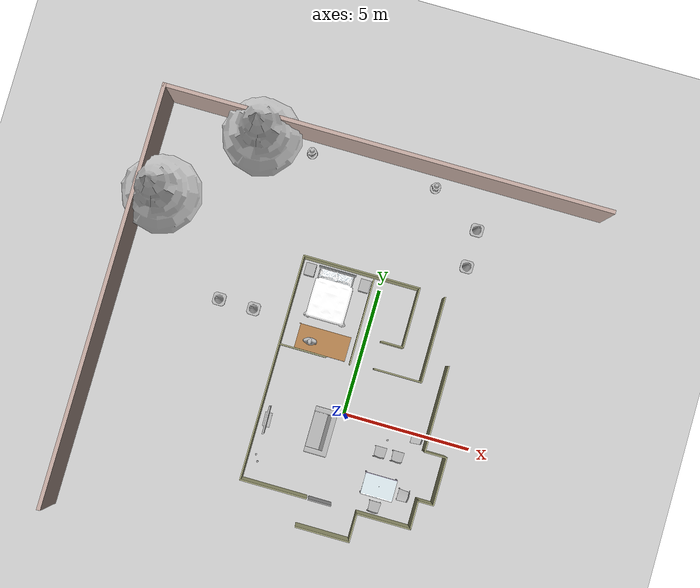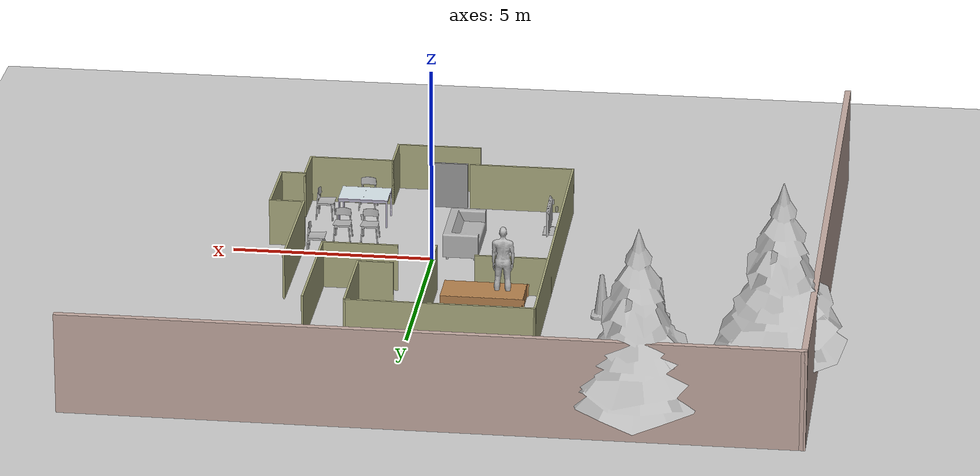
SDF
<sdf version="1.6">
 <world name="isr-testbed">
  <scene><ambient>0.4 0.4 0.4 1.0</ambient><shadows>0</shadows></scene>
  <include>
   <uri>model://ground_plane</uri>
   <material><script><uri>file://media/materials/scripts/gazebo.material</uri></script></material>
  </include>
  <include><uri>model://sun</uri></include>
  <light type="directional" name="directional">
   <pose>0 0 8 0 0 0</pose>
   <diffuse>0.3 0.3 0.3 1</diffuse>
   <specular>.1 .1 .1 1</specular>
   <attenuation>
    <range>20</range>
    <linear>0.01</linear>
    <constant>0.2</constant>
    <quadratic>0.0</quadratic>
   </attenuation>
   <direction>0 0 -1</direction>
  </light>
  <include><uri>file://isr-testbed/walls</uri><pose>0.491830 0.433522 0 0 0 0</pose></include>
  <include><uri>file://isr-testbed/wall</uri><pose>-1.19 1.86 0 0 0 0</pose></include>
  <include>
   <name>cone1</name>
   <uri>file://isr-testbed/construction_cone</uri>
   <pose>-5.94 2.97 0 0 0 0</pose>
  </include>
  <include>
   <name>cone2</name>
   <uri>file://isr-testbed/construction_cone</uri>
   <pose>-4.54 2.97 0 0 0 0</pose>
  </include>
  <include>
   <name>cone3</name>
   <uri>file://isr-testbed/construction_cone</uri>
   <pose>3.03 6.84 0 0 0 0</pose>
  </include>
  <include>
   <name>cone4</name>
   <uri>file://isr-testbed/construction_cone</uri>
   <pose>3.03 8.33 0 0 0 0</pose>
  </include>
  <include>
   <name>hydrant1</name>
   <uri>file://isr-testbed/fire_hydrant</uri>
   <pose>1.01 9.45 0 0 0 0</pose>
  </include>
  <include>
   <name>hydrant2</name>
   <uri>file://isr-testbed/fire_hydrant</uri>
   <pose>-4.0 9.45 0 0 0 0</pose>
  </include>
  <include><name>tree1</name><uri>file://isr-testbed/pine_tree</uri><pose>-6.0 9.45 0 0 0 0</pose></include>
  <include><name>tree2</name><uri>file://isr-testbed/pine_tree</uri><pose>-9.11 6.25 0 0 0 0</pose></include>
  <include>
   <name>human</name>
   <uri>file://isr-testbed/person_standing</uri>
   <pose>-2.04 2.41 0 0 0 0</pose>
  </include>
  <include><uri>file://isr-testbed/wardrobe</uri><pose>-2.65 2.44 0 1.57 0 1.57</pose></include>
  <include><uri>file://isr-testbed/beer</uri><pose>-2.73 -2.64 0.6 0 0 1</pose></include>
  <include>
   <name>cup1</name>
   <uri>file://isr-testbed/plastic_cup</uri>
   <pose>-2.85 -2.40 0.45 0 0 1</pose>
  </include>
  <include>
   <name>cup2</name>
   <uri>file://isr-testbed/plastic_cup</uri>
   <pose>1.83 -0.48 0.80 0 0 1</pose>
  </include>
  <include><uri>file://isr-testbed/bed</uri><pose>-1.94933 4.30992 0 0 0 0</pose></include>
  <include>
   <uri>file://isr-testbed/bedroom_nightstand</uri>
   <name>nightstand1</name>
   <pose>-0.69 5.0 0 0 0 0</pose>
  </include>
  <include>
   <uri>file://isr-testbed/bedroom_nightstand</uri>
   <name>nightstand2</name>
   <pose>-2.89 5.03713 0 0 0 0</pose>
  </include>
  <include><uri>file://isr-testbed/dinning_room_table</uri><pose>2.05802 -2.30976 0 0 0 0</pose></include>
  <include>
   <uri>file://isr-testbed/simple_chair</uri>
   <name>chair_dinning_room_1</name>
   <pose>1.91 -3.05 0 0 0 0</pose>
  </include>
  <include>
   <uri>file://isr-testbed/simple_chair</uri>
   <name>chair_dinning_room_2</name>
   <pose>2.96 -2.52 0 0 0 1.54796</pose>
  </include>
  <include>
   <uri>file://isr-testbed/simple_chair</uri>
   <name>chair_kitchen_1</name>
   <pose>1.57 -0.98 0 0 0 0</pose>
  </include>
  <include>
   <uri>file://isr-testbed/simple_chair</uri>
   <name>chair_kitchen_2</name>
   <pose>2.26 -0.97 0 0 0 0</pose>
  </include>
  <include>
   <uri>file://isr-testbed/simple_chair</uri>
   <name>chair_kitchen_3</name>
   <pose>2.88 -0.26 0 0 0 1.59</pose>
  </include>
  <include><uri>file://isr-testbed/sofa</uri><pose>-0.76 -0.90 0 0 0 0</pose></include>
  <include><uri>file://isr-testbed/tv</uri><pose>-2.85 -0.94 0.035264 0 0 -0.026</pose></include>
 </world>
</sdf>

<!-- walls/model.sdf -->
<sdf version='1.6'>
  <model name='walls'>
    <pose frame=''>0.070483 0.106017 0 0 -0 0</pose>
    <link name='Door_4'>
      <collision name='Door_4_Collision'>
        <geometry>
          <box>
            <size>0.906 0.05 1.2</size>
          </box>
        </geometry>
        <pose frame=''>0 0 0.6 0 -0 0</pose>
      </collision>
      <visual name='Door_4_Visual'>
        <pose frame=''>0 0 0.6 0 -0 0</pose>
        <geometry>
          <box>
            <size>0.906 0.05 1.2</size>
          </box>
        </geometry>
        <material>
          <script>
            <uri>file://media/materials/scripts/gazebo.material</uri>
            <name>Gazebo/Grey</name>
          </script>
        </material>
      </visual>
      <pose frame=''>-0.514741 -3.87011 0 0 0 -0.000969</pose>
    </link>
    <link name='Wall_19'>
      <collision name='Wall_19_Collision'>
        <geometry>
          <box>
            <size>1.9 0.05 1</size>
          </box>
        </geometry>
        <pose frame=''>0 0 0.5 0 -0 0</pose>
      </collision>
      <visual name='Wall_19_Visual'>
        <pose frame=''>0 0 0.5 0 -0 0</pose>
        <geometry>
          <box>
            <size>1.9 0.05 1</size>
          </box>
        </geometry>
        <material>
          <script>
            <uri>file://media/materials/scripts/gazebo.material</uri>
            <name>Gazebo/Grey</name>
          </script>
          <ambient>0.666667 0.666667 0.498039 1</ambient>
        </material>
      </visual>
      <pose frame=''>-2.73248 1.48798 0 0 -0 0</pose>
    </link>
    <link name='Wall_21'>
      <collision name='Wall_21_Collision'>
        <geometry>
          <box>
            <size>2.15 0.05 1.2</size>
          </box>
        </geometry>
        <pose frame=''>0 0 0.6 0 -0 0</pose>
      </collision>
      <visual name='Wall_21_Visual'>
        <pose frame=''>0 0 0.6 0 -0 0</pose>
        <geometry>
          <box>
            <size>2.15 0.05 1.2</size>
          </box>
        </geometry>
        <material>
          <script>
            <uri>file://media/materials/scripts/gazebo.material</uri>
            <name>Gazebo/Grey</name>
          </script>
          <ambient>0.666667 0.666667 0.498039 1</ambient>
        </material>
      </visual>
      <pose frame=''>-0.092483 -4.98802 0 0 -0 0</pose>
    </link>
    <link name='Wall_22'>
      <collision name='Wall_22_Collision'>
        <geometry>
          <box>
            <size>1.15 0.05 1.2</size>
          </box>
        </geometry>
        <pose frame=''>0 0 0.6 0 -0 0</pose>
      </collision>
      <visual name='Wall_22_Visual'>
        <pose frame=''>0 0 0.6 0 -0 0</pose>
        <geometry>
          <box>
            <size>1.15 0.05 1.2</size>
          </box>
        </geometry>
        <material>
          <script>
            <uri>file://media/materials/scripts/gazebo.material</uri>
            <name>Gazebo/Grey</name>
          </script>
          <ambient>0.666667 0.666667 0.498039 1</ambient>
        </material>
      </visual>
      <pose frame=''>0.957517 -4.43802 0 0 -0 1.5708</pose>
    </link>
    <link name='Wall_23'>
      <collision name='Wall_23_Collision'>
        <geometry>
          <box>
            <size>2.15 0.05 1.2</size>
          </box>
        </geometry>
        <pose frame=''>0 0 0.6 0 -0 0</pose>
      </collision>
      <visual name='Wall_23_Visual'>
        <pose frame=''>0 0 0.6 0 -0 0</pose>
        <geometry>
          <box>
            <size>2.15 0.05 1.2</size>
          </box>
        </geometry>
        <material>
          <script>
            <uri>file://media/materials/scripts/gazebo.material</uri>
            <name>Gazebo/Grey</name>
          </script>
          <ambient>0.666667 0.666667 0.498039 1</ambient>
        </material>
      </visual>
      <pose frame=''>2.00752 -3.88802 0 0 -0 0</pose>
    </link>
    <link name='Wall_24'>
      <collision name='Wall_24_Collision'>
        <geometry>
          <box>
            <size>1.15 0.05 1.2</size>
          </box>
        </geometry>
        <pose frame=''>0 0 0.6 0 -0 0</pose>
      </collision>
      <visual name='Wall_24_Visual'>
        <pose frame=''>0 0 0.6 0 -0 0</pose>
        <geometry>
          <box>
            <size>1.15 0.05 1.2</size>
          </box>
        </geometry>
        <material>
          <script>
            <uri>file://media/materials/scripts/gazebo.material</uri>
            <name>Gazebo/Grey</name>
          </script>
          <ambient>0.666667 0.666667 0.498039 1</ambient>
        </material>
      </visual>
      <pose frame=''>3.05752 -3.33802 0 0 -0 1.5708</pose>
    </link>
    <link name='Wall_25'>
      <collision name='Wall_25_Collision'>
        <geometry>
          <box>
            <size>0.65 0.05 1.2</size>
          </box>
        </geometry>
        <pose frame=''>0 0 0.6 0 -0 0</pose>
      </collision>
      <visual name='Wall_25_Visual'>
        <pose frame=''>0 0 0.6 0 -0 0</pose>
        <geometry>
          <box>
            <size>0.65 0.05 1.2</size>
          </box>
        </geometry>
        <material>
          <script>
            <uri>file://media/materials/scripts/gazebo.material</uri>
            <name>Gazebo/Grey</name>
          </script>
          <ambient>0.666667 0.666667 0.498039 1</ambient>
        </material>
      </visual>
      <pose frame=''>3.35752 -2.78802 0 0 -0 0</pose>
    </link>
    <link name='Wall_26'>
      <collision name='Wall_26_Collision'>
        <geometry>
          <box>
            <size>1.9 0.05 1.2</size>
          </box>
        </geometry>
        <pose frame=''>0 0 0.6 0 -0 0</pose>
      </collision>
      <visual name='Wall_26_Visual'>
        <pose frame=''>0 0 0.6 0 -0 0</pose>
        <geometry>
          <box>
            <size>1.9 0.05 1.2</size>
          </box>
        </geometry>
        <material>
          <script>
            <uri>file://media/materials/scripts/gazebo.material</uri>
            <name>Gazebo/Grey</name>
          </script>
          <ambient>0.666667 0.666667 0.498039 1</ambient>
        </material>
      </visual>
      <pose frame=''>3.65752 -1.86302 0 0 -0 1.5708</pose>
    </link>
    <link name='Wall_27'>
      <collision name='Wall_27_Collision'>
        <geometry>
          <box>
            <size>0.9 0.05 1.2</size>
          </box>
        </geometry>
        <pose frame=''>0 0 0.6 0 -0 0</pose>
      </collision>
      <visual name='Wall_27_Visual'>
        <pose frame=''>0 0 0.6 0 -0 0</pose>
        <geometry>
          <box>
            <size>0.9 0.05 1.2</size>
          </box>
        </geometry>
        <material>
          <script>
            <uri>file://media/materials/scripts/gazebo.material</uri>
            <name>Gazebo/Grey</name>
          </script>
          <ambient>0.666667 0.666667 0.498039 1</ambient>
        </material>
      </visual>
      <pose frame=''>3.23252 -0.938017 0 0 -0 3.14159</pose>
    </link>
    <link name='Wall_36'>
      <collision name='Wall_36_Collision'>
        <geometry>
          <box>
            <size>1.9 0.05 1.2</size>
          </box>
        </geometry>
        <pose frame=''>0 0 0.6 0 -0 0</pose>
      </collision>
      <visual name='Wall_36_Visual'>
        <pose frame=''>0 0 0.6 0 -0 0</pose>
        <geometry>
          <box>
            <size>1.9 0.05 1.2</size>
          </box>
        </geometry>
        <material>
          <script>
            <uri>file://media/materials/scripts/gazebo.material</uri>
            <name>Gazebo/Grey</name>
          </script>
          <ambient>0.666667 0.666667 0.498039 1</ambient>
        </material>
      </visual>
      <pose frame=''>1.04652 1.55798 0 0 -0 0</pose>
    </link>
    <link name='Wall_48'>
      <collision name='Wall_48_Collision'>
        <geometry>
          <box>
            <size>8.90001 0.05 1.2</size>
          </box>
        </geometry>
        <pose frame=''>0 0 0.6 0 -0 0</pose>
      </collision>
      <visual name='Wall_48_Visual'>
        <pose frame=''>0 0 0.6 0 -0 0</pose>
        <geometry>
          <box>
            <size>8.90001 0.05 1.2</size>
          </box>
        </geometry>
        <material>
          <script>
            <uri>file://media/materials/scripts/gazebo.material</uri>
            <name>Gazebo/Grey</name>
          </script>
          <ambient>0.666667 0.666667 0.498039 1</ambient>
        </material>
      </visual>
      <pose frame=''>-3.65148 0.562983 0 0 -0 1.57215</pose>
    </link>
    <link name='Wall_49'>
      <collision name='Wall_49_Collision'>
        <geometry>
          <box>
            <size>4.65 0.05 1.2</size>
          </box>
        </geometry>
        <pose frame=''>0 0 0.6 0 -0 0</pose>
      </collision>
      <visual name='Wall_49_Visual'>
        <pose frame=''>0 0 0.6 0 -0 0</pose>
        <geometry>
          <box>
            <size>4.65 0.05 1.2</size>
          </box>
        </geometry>
        <material>
          <script>
            <uri>file://media/materials/scripts/gazebo.material</uri>
            <name>Gazebo/Grey</name>
          </script>
          <ambient>0.666667 0.666667 0.498039 1</ambient>
        </material>
      </visual>
      <pose frame=''>-1.35748 4.98798 0 0 -0 0</pose>
    </link>
    <link name='Wall_50'>
      <collision name='Wall_50_Collision'>
        <geometry>
          <box>
            <size>2.4 0.05 1.2</size>
          </box>
        </geometry>
        <pose frame=''>0 0 0.6 0 -0 0</pose>
      </collision>
      <visual name='Wall_50_Visual'>
        <pose frame=''>0 0 0.6 0 -0 0</pose>
        <geometry>
          <box>
            <size>2.4 0.05 1.2</size>
          </box>
        </geometry>
        <material>
          <script>
            <uri>file://media/materials/scripts/gazebo.material</uri>
            <name>Gazebo/Grey</name>
          </script>
          <ambient>0.666667 0.666667 0.498039 1</ambient>
        </material>
      </visual>
      <pose frame=''>0.942517 3.81298 0 0 0 -1.5708</pose>
    </link>
    <link name='Wall_51'>
      <collision name='Wall_51_Collision'>
        <geometry>
          <box>
            <size>0.9 0.05 1.2</size>
          </box>
        </geometry>
        <pose frame=''>0 0 0.6 0 -0 0</pose>
      </collision>
      <visual name='Wall_51_Visual'>
        <pose frame=''>0 0 0.6 0 -0 0</pose>
        <geometry>
          <box>
            <size>0.9 0.05 1.2</size>
          </box>
        </geometry>
        <material>
          <script>
            <uri>file://media/materials/scripts/gazebo.material</uri>
            <name>Gazebo/Grey</name>
          </script>
          <ambient>0.666667 0.666667 0.498039 1</ambient>
        </material>
      </visual>
      <pose frame=''>0.517517 2.63798 0 0 -0 3.14159</pose>
    </link>
    <link name='Wall_53'>
      <collision name='Wall_53_Collision'>
        <geometry>
          <box>
            <size>3.4 0.05 1.2</size>
          </box>
        </geometry>
        <pose frame=''>0 0 0.6 0 -0 0</pose>
      </collision>
      <visual name='Wall_53_Visual'>
        <pose frame=''>0 0 0.6 0 -0 0</pose>
        <geometry>
          <box>
            <size>3.4 0.05 1.2</size>
          </box>
        </geometry>
        <material>
          <script>
            <uri>file://media/materials/scripts/gazebo.material</uri>
            <name>Gazebo/Grey</name>
          </script>
          <ambient>0.666667 0.666667 0.498039 1</ambient>
        </material>
      </visual>
      <pose frame=''>-0.835483 3.14198 0 0 -0 1.5708</pose>
    </link>
    <link name='Wall_58'>
      <collision name='Wall_58_Collision'>
        <geometry>
          <box>
            <size>3.4 0.05 1.2</size>
          </box>
        </geometry>
        <pose frame=''>0 0 0.6 0 -0 0</pose>
      </collision>
      <visual name='Wall_58_Visual'>
        <pose frame=''>0 0 0.6 0 -0 0</pose>
        <geometry>
          <box>
            <size>3.4 0.05 1.2</size>
          </box>
        </geometry>
        <material>
          <script>
            <uri>file://media/materials/scripts/gazebo.material</uri>
            <name>Gazebo/Grey</name>
          </script>
          <ambient>0.666667 0.666667 0.498039 1</ambient>
        </material>
      </visual>
      <pose frame=''>1.97152 3.23298 0 0 -0 1.5708</pose>
    </link>
    <link name='Wall_61'>
      <collision name='Wall_61_Collision'>
        <geometry>
          <box>
            <size>2.65 0.05 1.2</size>
          </box>
        </geometry>
        <pose frame=''>0 0 0.6 0 -0 0</pose>
      </collision>
      <visual name='Wall_61_Visual'>
        <pose frame=''>0 0 0.6 0 -0 0</pose>
        <geometry>
          <box>
            <size>2.65 0.05 1.2</size>
          </box>
        </geometry>
        <material>
          <script>
            <uri>file://media/materials/scripts/gazebo.material</uri>
            <name>Gazebo/Grey</name>
          </script>
          <ambient>0.666667 0.666667 0.498039 1</ambient>
        </material>
      </visual>
      <pose frame=''>-2.34548 -3.86202 0 0 -0 0</pose>
    </link>
    <link name='Wall_63'>
      <collision name='Wall_63_Collision'>
        <geometry>
          <box>
            <size>3.4 0.05 1.2</size>
          </box>
        </geometry>
        <pose frame=''>0 0 0.6 0 -0 0</pose>
      </collision>
      <visual name='Wall_63_Visual'>
        <pose frame=''>0 0 0.6 0 -0 0</pose>
        <geometry>
          <box>
            <size>3.4 0.05 1.2</size>
          </box>
        </geometry>
        <material>
          <script>
            <uri>file://media/materials/scripts/gazebo.material</uri>
            <name>Gazebo/Grey</name>
          </script>
          <ambient>0.666667 0.666667 0.498039 1</ambient>
        </material>
      </visual>
      <pose frame=''>2.80752 0.736983 0 0 -0 1.5708</pose>
    </link>
    <static>1</static>
  </model>
</sdf>

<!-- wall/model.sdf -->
<sdf version='1.6'>
  <model name='wall'>
    <pose frame=''>-1.26581 1.80502 0 0 -0 0</pose>
    <link name='Wall_0'>
      <collision name='Wall_0_Collision'>
        <geometry>
          <box>
            <size>16.5 0.15 2.5</size>
          </box>
        </geometry>
        <pose frame=''>0 0 1.25 0 -0 0</pose>
      </collision>
      <visual name='Wall_0_Visual'>
        <pose frame=''>0 0 1.25 0 -0 0</pose>
        <geometry>
          <box>
            <size>16.5 0.15 2.5</size>
          </box>
        </geometry>
        <material>
          <script>
            <uri>file://media/materials/scripts/gazebo.material</uri>
            <name>Gazebo/Grey</name>
          </script>
          <ambient>0.760784 0.662745 0.627451 1</ambient>
        </material>
        <meta>
          <layer>0</layer>
        </meta>
      </visual>
      <pose frame=''>-8.71419 -1.8e-05 0 0 0 -1.5708</pose>
    </link>
    <link name='Wall_2'>
      <collision name='Wall_2_Collision'>
        <geometry>
          <box>
            <size>17.5784 0.15 2.5</size>
          </box>
        </geometry>
        <pose frame=''>0 0 1.25 0 -0 0</pose>
      </collision>
      <visual name='Wall_2_Visual'>
        <pose frame=''>0 0 1.25 0 -0 0</pose>
        <geometry>
          <box>
            <size>17.5784 0.15 2.5</size>
          </box>
        </geometry>
        <material>
          <script>
            <uri>file://media/materials/scripts/gazebo.material</uri>
            <name>Gazebo/Grey</name>
          </script>
          <ambient>0.760784 0.662745 0.627451 1</ambient>
        </material>
        <meta>
          <layer>0</layer>
        </meta>
      </visual>
      <pose frame=''>0 8.17066 0 0 0 -0.000496</pose>
    </link>
    <static>1</static>
  </model>
</sdf>

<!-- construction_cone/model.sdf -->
<sdf version="1.5">
  <model name="Construction Cone">
    <link name="link">
      <collision name="collision">
        <geometry>
          <mesh>
            <scale>10 10 10</scale>
            <uri>file://isr-testbed/construction_cone/meshes/construction_cone.dae</uri>
          </mesh>
        </geometry>
      </collision>
      <visual name="visual">
        <geometry>
          <mesh>
            <scale>10 10 10</scale>
            <uri>file://isr-testbed/construction_cone/meshes/construction_cone.dae</uri>
          </mesh>
        </geometry>
      </visual>
    </link>
  </model>
</sdf>

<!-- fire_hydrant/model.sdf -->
<sdf version="1.5">
  <model name="fire_hydrant">
    <static>true</static>
    <link name="link">
      <collision name="collision">
        <geometry>
          <mesh>
            <uri>file://isr-testbed/fire_hydrant/meshes/fire_hydrant.dae</uri>
          </mesh>
        </geometry>
      </collision>
      <visual name="visual">
        <geometry>
          <mesh>
            <uri>file://isr-testbed/fire_hydrant/meshes/fire_hydrant.dae</uri>
          </mesh>
        </geometry>
      </visual>
    </link>
  </model>
</sdf>

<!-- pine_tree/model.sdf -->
<sdf version="1.6">
  <model name="pine_tree">
    <static>true</static>
    <link name="link">
      <collision name="collision">
        <geometry>
          <mesh>
            <uri>file://isr-testbed/pine_tree/meshes/pine_tree.dae</uri>
          </mesh>
        </geometry>
      </collision>
      <visual name="branch">
        <geometry>
          <mesh>
            <uri>file://isr-testbed/pine_tree/meshes/pine_tree.dae</uri>
            <submesh>
              <name>Branch</name>
            </submesh>
          </mesh>
        </geometry>
        <material>
          <script>
            <uri>file://isr-testbed/pine_tree/materials/scripts/</uri>
            <uri>file://isr-testbed/pine_tree/materials/textures/</uri>
            <name>PineTree/Branch</name>
          </script>
        </material>
      </visual>
      <visual name="bark">
        <geometry>
          <mesh>
            <uri>file://isr-testbed/pine_tree/meshes/pine_tree.dae</uri>
            <submesh>
              <name>Bark</name>
            </submesh>
          </mesh>
        </geometry>
        <material>
          <script>
            <uri>file://isr-testbed/pine_tree/materials/scripts/</uri>
            <uri>file://isr-testbed/pine_tree/materials/textures/</uri>
            <name>PineTree/Bark</name>
          </script>
        </material>
      </visual>
    </link>
  </model>
</sdf>

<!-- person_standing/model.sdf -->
<sdf version="1.5">
  <model name="person_standing">
    <link name="link">
      <inertial>
        <pose>0 -0.1 0.95 0 0 0</pose>
        <mass>80.0</mass>
        <inertia>
          <ixx>24.88</ixx>
          <ixy>0</ixy>
          <ixz>0</ixz>
          <iyy>25.73</iyy>
          <iyz>0</iyz>
          <izz>2.48</izz>
        </inertia>
      </inertial>

      <collision name="bottom">
        <pose>0 -0.1 0.01 0 0 0</pose>
        <geometry>
          <box>
            <size>0.5 0.35 0.02</size>
          </box>
        </geometry>
      </collision>

      <collision name="person">
        <pose>0 0 0.02 0.04 0 0</pose>
        <geometry>
          <mesh>
            <uri>file://isr-testbed/person_standing/meshes/standing.stl</uri>
          </mesh>
        </geometry>
      </collision>

      <visual name="visual">
        <pose>0 0 0.02 0.04 0 0</pose>
        <geometry>
          <mesh>
            <uri>file://isr-testbed/person_standing/meshes/standing.dae</uri>
          </mesh>
        </geometry>
      </visual>
    </link>
  </model>
</sdf>

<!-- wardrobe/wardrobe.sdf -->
<sdf version='1.6'>
  <model name='wardrobe'>
    <link name='base_link'>
      <pose frame=''>0 0 0 0 -0 0</pose>
      <inertial>
        <pose frame=''>0 1.1 0 0 -0 0</pose>
        <mass>20</mass>
        <inertia>
          <ixx>7.5306636544</ixx>
          <ixy>0</ixy>
          <ixz>0</ixz>
          <iyy>2.5306656544</iyy>
          <iyz>0</iyz>
          <izz>8.33333</izz>
        </inertia>
      </inertial>
      <visual name='base_link_collision'>
        <pose frame=''>0 0 0 0 -0 0</pose>
        <geometry>
          <mesh>
            <scale>1 1 1</scale>
            <uri>file://isr-testbed/wardrobe/3d-model.dae</uri>
          </mesh>
        </geometry>
        <material>
          <script>
            <uri>file://media/materials/scripts/gazebo.material</uri>
            <name>Gazebo/WoodFloor</name>
          </script>
        </material>
      </visual>
      <collision name='base_link_visual'>
        <pose frame=''>0 1.1 0 0 -0 0</pose>
        <geometry>
          <box>
            <size>1 2 0.72</size>
          </box>
        </geometry>
      </collision>
    </link>
    <static>1</static>
  </model>
</sdf>

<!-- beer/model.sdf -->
<sdf version='1.4'>
  <model name="beer">
    <link name='link'>
      <pose>0 0 0 0 0 0</pose>
      <inertial>
        <mass>0.390</mass>
        <inertia>
          <ixx>0.00058</ixx>
          <ixy>0</ixy>
          <ixz>0</ixz>
          <iyy>0.00058</iyy>
          <iyz>0</iyz>
          <izz>0.00025</izz>
        </inertia>
      </inertial>
      <collision name='collision'>
        <geometry>
          <cylinder>
            <radius>0.03500</radius>
            <length>0.12000</length>
          </cylinder>
        </geometry>
      </collision>

      <visual name='visual'>
        <geometry>
          <cylinder>
            <radius>0.03500</radius>
            <length>0.12000</length>
          </cylinder>
        </geometry>

        <material>
          <script>
            <uri>model://beer/materials/scripts</uri>
            <uri>model://beer/materials/textures</uri>
            <name>Beer/Diffuse</name>
          </script>
        </material>
      </visual>
    </link>
  </model>
</sdf>

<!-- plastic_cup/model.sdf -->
<sdf version="1.5">
  <model name="plastic_cup">
    <link name="link">
      <pose>0 0 0.065 0 0 0</pose>
      <inertial>
        <pose>0 0.01 0 0 0 0</pose>
        <mass>0.0599</mass>
        <inertia>
          <ixx>0.0001028961527030333</ixx>
          <ixy>0</ixy>
          <ixz>0</ixz>
          <iyy>0.0001028961527030333</iyy>
          <iyz>0</iyz>
          <izz>3.2876352372798436e-05</izz>
        </inertia>
      </inertial>
      <collision name="collision">
        <pose>0 0 0 0 0 0</pose>
        <geometry>
          <mesh>
            <uri>file://isr-testbed/plastic_cup/meshes/plastic_cup.dae</uri>
          </mesh>
        </geometry>
      </collision>
      <visual name="visual">
        <pose>0 0 0 0 0 0</pose>
        <geometry>
          <mesh>
            <uri>file://isr-testbed/plastic_cup/meshes/plastic_cup.dae</uri>
          </mesh>
        </geometry>
        <material>
          <script>
            <uri>file://media/materials/scripts/gazebo.material</uri>
            <name>Gazebo/GreyTransparent</name>
          </script>
        </material>
      </visual>
    </link>
  </model>
</sdf>

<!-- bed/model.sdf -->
<sdf version='1.6'>
  <model name='bed'>
    <link name='link_0'>
      <pose frame=''>0 0 0 0 -0 0</pose>
      <inertial>
        <pose frame=''>0.2 0 0 0 -0 0</pose>
        <mass>30</mass>
        <inertia>
          <ixx>12.9999948</ixx>
          <ixy>0</ixy>
          <ixz>0</ixz>
          <iyy>7.29999708</iyy>
          <iyz>0</iyz>
          <izz>18.4999926</izz>
        </inertia>
      </inertial>
      <visual name='visual'>
        <pose frame=''>-1.35 -8 -0.3 0 -0 -0</pose>
        <geometry>
          <mesh>
            <uri>file://isr-testbed/bed/bed.dae</uri>
            <scale>1 1 1</scale>
          </mesh>
        </geometry>
        <cast_shadows>1</cast_shadows>
        <transparency>0</transparency>
      </visual>
      <collision name='collision'>
        <laser_retro>0</laser_retro>
        <max_contacts>10</max_contacts>
        <pose frame=''>0.2 0 0 0 -0 0</pose>
        <geometry>
          <box>
            <size>1.6 2.2 0.6</size>
          </box>
        </geometry>
        <surface>
          <friction>
            <ode>
              <mu>1</mu>
              <mu2>1</mu2>
              <fdir1>0 0 0</fdir1>
              <slip1>0</slip1>
              <slip2>0</slip2>
            </ode>
            <torsional>
              <coefficient>1</coefficient>
              <patch_radius>0</patch_radius>
              <surface_radius>0</surface_radius>
              <use_patch_radius>1</use_patch_radius>
              <ode>
                <slip>0</slip>
              </ode>
            </torsional>
          </friction>
          <bounce>
            <restitution_coefficient>0</restitution_coefficient>
            <threshold>1e+06</threshold>
          </bounce>
          <contact>
            <collide_without_contact>0</collide_without_contact>
            <collide_without_contact_bitmask>1</collide_without_contact_bitmask>
            <collide_bitmask>1</collide_bitmask>
            <ode>
              <soft_cfm>0</soft_cfm>
              <soft_erp>0.2</soft_erp>
              <kp>1e+13</kp>
              <kd>1</kd>
              <max_vel>0.01</max_vel>
              <min_depth>0</min_depth>
            </ode>
            <bullet>
              <split_impulse>1</split_impulse>
              <split_impulse_penetration_threshold>-0.01</split_impulse_penetration_threshold>
              <soft_cfm>0</soft_cfm>
              <soft_erp>0.2</soft_erp>
              <kp>1e+13</kp>
              <kd>1</kd>
            </bullet>
          </contact>
        </surface>
      </collision>
    </link>
    <static>0</static> <!-- center has an offset so will not behave properly if this is set to 0 -->
    <allow_auto_disable>1</allow_auto_disable>
  </model>
</sdf>

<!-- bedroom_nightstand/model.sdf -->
<sdf version='1.6'>
  <model name='bedroom_nightstand'>
    <link name='link_0'>
      <pose frame=''>0 0 0 0 -0 0</pose>
      <inertial>
        <mass>5</mass>
        <inertia>
          <ixx>0.166667</ixx>
          <ixy>0</ixy>
          <ixz>0</ixz>
          <iyy>0.166667</iyy>
          <iyz>0</iyz>
          <izz>0.166667</izz>
        </inertia>
      </inertial>
      <visual name='visual'>
        <pose frame=''>0 0 0 0 -0 0</pose>
        <geometry>
          <mesh>
            <uri>file://isr-testbed/bedroom_nightstand/bedroom_nightstand.dae</uri>
            <scale>1 1 1</scale>
          </mesh>
        </geometry>
        <material>
          <lighting>1</lighting>
          <script>
            <uri>file://media/materials/scripts/gazebo.material</uri>
            <name>Gazebo/DepthMapVS</name>
          </script>
          <ambient>0.3 0.3 0.3 1</ambient>
          <diffuse>0.7 0.7 0.7 1</diffuse>
          <specular>0.01 0.01 0.01 1</specular>
          <emissive>0 0 0 1</emissive>
        </material>
        <cast_shadows>1</cast_shadows>
        <transparency>0</transparency>
      </visual>
      <collision name='collision'>
        <laser_retro>0</laser_retro>
        <max_contacts>10</max_contacts>
        <pose frame=''>0 0 0 0 -0 0</pose>
        <geometry>
          <mesh>
            <uri>file://isr-testbed/bedroom_nightstand/bedroom_nightstand.dae</uri>
          </mesh>
        </geometry>
        <surface>
          <friction>
            <ode>
              <mu>1</mu>
              <mu2>1</mu2>
              <fdir1>0 0 0</fdir1>
              <slip1>0</slip1>
              <slip2>0</slip2>
            </ode>
            <torsional>
              <coefficient>1</coefficient>
              <patch_radius>0</patch_radius>
              <surface_radius>0</surface_radius>
              <use_patch_radius>1</use_patch_radius>
              <ode>
                <slip>0</slip>
              </ode>
            </torsional>
          </friction>
          <bounce>
            <restitution_coefficient>0</restitution_coefficient>
            <threshold>1e+06</threshold>
          </bounce>
          <contact>
            <collide_without_contact>0</collide_without_contact>
            <collide_without_contact_bitmask>1</collide_without_contact_bitmask>
            <collide_bitmask>1</collide_bitmask>
            <ode>
              <soft_cfm>0</soft_cfm>
              <soft_erp>0.2</soft_erp>
              <kp>1e+13</kp>
              <kd>1</kd>
              <max_vel>0.01</max_vel>
              <min_depth>0</min_depth>
            </ode>
            <bullet>
              <split_impulse>1</split_impulse>
              <split_impulse_penetration_threshold>-0.01</split_impulse_penetration_threshold>
              <soft_cfm>0</soft_cfm>
              <soft_erp>0.2</soft_erp>
              <kp>1e+13</kp>
              <kd>1</kd>
            </bullet>
          </contact>
        </surface>
      </collision>
    </link>
    <static>0</static>
    <allow_auto_disable>1</allow_auto_disable>
  </model>
</sdf>

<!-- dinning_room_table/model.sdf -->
<sdf version='1.6'>
  <model name='dinning_room_table'>
    <link name='base_link'>
      <pose frame=''>0 0 0 0 0 0</pose>
      <inertial>
        <pose frame=''>-0.04 0.015 0.75 0 0 0</pose>
        <mass>10</mass>
        <inertia>
          <ixx>0.68333306</ixx>
          <ixy>0</ixy>
          <ixz>0</ixz>
          <iyy>1.4166661</iyy>
          <iyz>0</iyz>
          <izz>2.0833325</izz>
        </inertia>
      </inertial>
      <visual name='visual'>
        <pose frame=''>-4.8 -1.2 0 0 -0 0</pose>
        <geometry>
          <mesh>
            <uri>file://isr-testbed/dinning_room_table/dinning_room_table.dae</uri>
            <scale>1 1 1</scale>
          </mesh>
        </geometry>
        <transparency>0</transparency>
      </visual>
      <collision name='base_collision'>
        <laser_retro>0</laser_retro>
        <max_contacts>10</max_contacts>
        <pose frame=''>-0.04 0.015 0.75 0 0 0</pose>
        <geometry>
          <box>
            <size>1.3 0.9 0.1</size>
          </box>
        </geometry>
      </collision>
      <collision name='leg1_collision'>
        <laser_retro>0</laser_retro>
        <max_contacts>10</max_contacts>
        <pose frame=''>-0.65 -0.4 0.45 0 0 0</pose>
        <geometry>
          <cylinder>
            <radius>.05</radius>
            <length>0.7</length>
          </cylinder>
        </geometry>
      </collision>
      <collision name='leg2_collision'>
        <laser_retro>0</laser_retro>
        <max_contacts>10</max_contacts>
        <pose frame=''>0.55 -0.4 0.45 0 0 0</pose>
        <geometry>
          <cylinder>
            <radius>.05</radius>
            <length>0.7</length>
          </cylinder>
        </geometry>
      </collision>
      <collision name='leg3_collision'>
        <laser_retro>0</laser_retro>
        <max_contacts>10</max_contacts>
        <pose frame=''>0.55 0.4 0.45 0 0 0</pose>
        <geometry>
          <cylinder>
            <radius>.05</radius>
            <length>0.7</length>
          </cylinder>
        </geometry>
      </collision>
      <collision name='leg4_collision'>
        <laser_retro>0</laser_retro>
        <max_contacts>10</max_contacts>
        <pose frame=''>-0.65 0.4 0.45 0 0 0</pose>
        <geometry>
          <cylinder>
            <radius>.05</radius>
            <length>0.7</length>
          </cylinder>
        </geometry>
      </collision>
    </link>
    <static>0</static>
  </model>
</sdf>

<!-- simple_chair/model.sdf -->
<sdf version='1.6'>
  <model name='simple_chair'>
    <link name='link_0'>
      <pose frame=''>0 0 0 0 -0 0</pose>
      <inertial>
        <pose frame=''>0.12 -0.05 0.35 0 -0 0</pose>
        <mass>1.5</mass>
        <inertia>
          <ixx>0.1</ixx>
          <ixy>0</ixy>
          <ixz>0</ixz>
          <iyy>0.1</iyy>
          <iyz>0</iyz>
          <izz>0.1</izz>
        </inertia>
      </inertial>
      <visual name='visual'>
        <pose frame=''>0 0 0 0 -0 0</pose>
        <geometry>
          <mesh>
            <uri>file://isr-testbed/simple_chair/simple_chair.dae</uri>
            <scale>1 1 1</scale>
          </mesh>
        </geometry>
        <material>
          <lighting>1</lighting>
          <script>
            <uri>file://media/materials/scripts/gazebo.material</uri>
            <name>Gazebo/DepthMapVS</name>
          </script>
          <ambient>0.3 0.3 0.3 1</ambient>
          <diffuse>0.7 0.7 0.7 1</diffuse>
          <specular>0.01 0.01 0.01 1</specular>
          <emissive>0 0 0 1</emissive>
        </material>
        <cast_shadows>1</cast_shadows>
        <transparency>0</transparency>
      </visual>
      <collision name='collision_base'>
        <laser_retro>0</laser_retro>
        <max_contacts>10</max_contacts>
        <pose frame=''>0.15 -0.05 0.45 0 -0 0</pose>
        <geometry>
          <box>
            <size>0.5 0.45 0.05</size>
          </box>
        </geometry>
        <surface>
          <friction>
            <ode>
              <mu>1</mu>
              <mu2>1</mu2>
              <fdir1>0 0 0</fdir1>
              <slip1>0</slip1>
              <slip2>0</slip2>
            </ode>
            <torsional>
              <coefficient>1</coefficient>
              <patch_radius>0</patch_radius>
              <surface_radius>0</surface_radius>
              <use_patch_radius>1</use_patch_radius>
              <ode>
                <slip>0</slip>
              </ode>
            </torsional>
          </friction>
          <bounce>
            <restitution_coefficient>0</restitution_coefficient>
            <threshold>1e+06</threshold>
          </bounce>
          <contact>
            <collide_without_contact>0</collide_without_contact>
            <collide_without_contact_bitmask>1</collide_without_contact_bitmask>
            <collide_bitmask>1</collide_bitmask>
            <ode>
              <soft_cfm>0</soft_cfm>
              <soft_erp>0.2</soft_erp>
              <kp>1e+13</kp>
              <kd>1</kd>
              <max_vel>0.01</max_vel>
              <min_depth>0</min_depth>
            </ode>
            <bullet>
              <split_impulse>1</split_impulse>
              <split_impulse_penetration_threshold>-0.01</split_impulse_penetration_threshold>
              <soft_cfm>0</soft_cfm>
              <soft_erp>0.2</soft_erp>
              <kp>1e+13</kp>
              <kd>1</kd>
            </bullet>
          </contact>
        </surface>
      </collision>
      <collision name='collision_back'>
        <laser_retro>0</laser_retro>
        <max_contacts>10</max_contacts>
        <pose frame=''>0.15 -0.22 0.6 0 -0 0</pose>
        <geometry>
          <box>
            <size>0.5 0.075 0.38</size>
          </box>
        </geometry>
        <surface>
          <friction>
            <ode>
              <mu>1</mu>
              <mu2>1</mu2>
              <fdir1>0 0 0</fdir1>
              <slip1>0</slip1>
              <slip2>0</slip2>
            </ode>
            <torsional>
              <coefficient>1</coefficient>
              <patch_radius>0</patch_radius>
              <surface_radius>0</surface_radius>
              <use_patch_radius>1</use_patch_radius>
              <ode>
                <slip>0</slip>
              </ode>
            </torsional>
          </friction>
          <bounce>
            <restitution_coefficient>0</restitution_coefficient>
            <threshold>1e+06</threshold>
          </bounce>
          <contact>
            <collide_without_contact>0</collide_without_contact>
            <collide_without_contact_bitmask>1</collide_without_contact_bitmask>
            <collide_bitmask>1</collide_bitmask>
            <ode>
              <soft_cfm>0</soft_cfm>
              <soft_erp>0.2</soft_erp>
              <kp>1e+13</kp>
              <kd>1</kd>
              <max_vel>0.01</max_vel>
              <min_depth>0</min_depth>
            </ode>
            <bullet>
              <split_impulse>1</split_impulse>
              <split_impulse_penetration_threshold>-0.01</split_impulse_penetration_threshold>
              <soft_cfm>0</soft_cfm>
              <soft_erp>0.2</soft_erp>
              <kp>1e+13</kp>
              <kd>1</kd>
            </bullet>
          </contact>
        </surface>
      </collision>
      <collision name='collision_leg1'>
        <laser_retro>0</laser_retro>
        <max_contacts>10</max_contacts>
        <pose frame=''>0.33 -0.25 0.2 0 -0 0</pose>
        <geometry>
          <box>
            <size>0.08 0.08 0.5</size>
          </box>
        </geometry>
        <surface>
          <friction>
            <ode>
              <mu>1</mu>
              <mu2>1</mu2>
              <fdir1>0 0 0</fdir1>
              <slip1>0</slip1>
              <slip2>0</slip2>
            </ode>
            <torsional>
              <coefficient>1</coefficient>
              <patch_radius>0</patch_radius>
              <surface_radius>0</surface_radius>
              <use_patch_radius>1</use_patch_radius>
              <ode>
                <slip>0</slip>
              </ode>
            </torsional>
          </friction>
          <bounce>
            <restitution_coefficient>0</restitution_coefficient>
            <threshold>1e+06</threshold>
          </bounce>
          <contact>
            <collide_without_contact>0</collide_without_contact>
            <collide_without_contact_bitmask>1</collide_without_contact_bitmask>
            <collide_bitmask>1</collide_bitmask>
            <ode>
              <soft_cfm>0</soft_cfm>
              <soft_erp>0.2</soft_erp>
              <kp>1e+13</kp>
              <kd>1</kd>
              <max_vel>0.01</max_vel>
              <min_depth>0</min_depth>
            </ode>
            <bullet>
              <split_impulse>1</split_impulse>
              <split_impulse_penetration_threshold>-0.01</split_impulse_penetration_threshold>
              <soft_cfm>0</soft_cfm>
              <soft_erp>0.2</soft_erp>
              <kp>1e+13</kp>
              <kd>1</kd>
            </bullet>
          </contact>
        </surface>
      </collision>
      <collision name='collision_leg2'>
        <laser_retro>0</laser_retro>
        <max_contacts>10</max_contacts>
        <pose frame=''>0.33 0.15 0.2 0 -0 0</pose>
        <geometry>
          <box>
            <size>0.08 0.08 0.5</size>
          </box>
        </geometry>
        <surface>
          <friction>
            <ode>
              <mu>1</mu>
              <mu2>1</mu2>
              <fdir1>0 0 0</fdir1>
              <slip1>0</slip1>
              <slip2>0</slip2>
            </ode>
            <torsional>
              <coefficient>1</coefficient>
              <patch_radius>0</patch_radius>
              <surface_radius>0</surface_radius>
              <use_patch_radius>1</use_patch_radius>
              <ode>
                <slip>0</slip>
              </ode>
            </torsional>
          </friction>
          <bounce>
            <restitution_coefficient>0</restitution_coefficient>
            <threshold>1e+06</threshold>
          </bounce>
          <contact>
            <collide_without_contact>0</collide_without_contact>
            <collide_without_contact_bitmask>1</collide_without_contact_bitmask>
            <collide_bitmask>1</collide_bitmask>
            <ode>
              <soft_cfm>0</soft_cfm>
              <soft_erp>0.2</soft_erp>
              <kp>1e+13</kp>
              <kd>1</kd>
              <max_vel>0.01</max_vel>
              <min_depth>0</min_depth>
            </ode>
            <bullet>
              <split_impulse>1</split_impulse>
              <split_impulse_penetration_threshold>-0.01</split_impulse_penetration_threshold>
              <soft_cfm>0</soft_cfm>
              <soft_erp>0.2</soft_erp>
              <kp>1e+13</kp>
              <kd>1</kd>
            </bullet>
          </contact>
        </surface>
      </collision>
      <collision name='collision_leg3'>
        <laser_retro>0</laser_retro>
        <max_contacts>10</max_contacts>
        <pose frame=''>-0.05 -0.25 0.2 0 -0 0</pose>
        <geometry>
          <box>
            <size>0.08 0.08 0.5</size>
          </box>
        </geometry>
        <surface>
          <friction>
            <ode>
              <mu>1</mu>
              <mu2>1</mu2>
              <fdir1>0 0 0</fdir1>
              <slip1>0</slip1>
              <slip2>0</slip2>
            </ode>
            <torsional>
              <coefficient>1</coefficient>
              <patch_radius>0</patch_radius>
              <surface_radius>0</surface_radius>
              <use_patch_radius>1</use_patch_radius>
              <ode>
                <slip>0</slip>
              </ode>
            </torsional>
          </friction>
          <bounce>
            <restitution_coefficient>0</restitution_coefficient>
            <threshold>1e+06</threshold>
          </bounce>
          <contact>
            <collide_without_contact>0</collide_without_contact>
            <collide_without_contact_bitmask>1</collide_without_contact_bitmask>
            <collide_bitmask>1</collide_bitmask>
            <ode>
              <soft_cfm>0</soft_cfm>
              <soft_erp>0.2</soft_erp>
              <kp>1e+13</kp>
              <kd>1</kd>
              <max_vel>0.01</max_vel>
              <min_depth>0</min_depth>
            </ode>
            <bullet>
              <split_impulse>1</split_impulse>
              <split_impulse_penetration_threshold>-0.01</split_impulse_penetration_threshold>
              <soft_cfm>0</soft_cfm>
              <soft_erp>0.2</soft_erp>
              <kp>1e+13</kp>
              <kd>1</kd>
            </bullet>
          </contact>
        </surface>
      </collision>
      <collision name='collision_leg4'>
        <laser_retro>0</laser_retro>
        <max_contacts>10</max_contacts>
        <pose frame=''>-0.05 0.15 0.2 0 -0 0</pose>
        <geometry>
          <box>
            <size>0.08 0.08 0.5</size>
          </box>
        </geometry>
        <surface>
          <friction>
            <ode>
              <mu>1</mu>
              <mu2>1</mu2>
              <fdir1>0 0 0</fdir1>
              <slip1>0</slip1>
              <slip2>0</slip2>
            </ode>
            <torsional>
              <coefficient>1</coefficient>
              <patch_radius>0</patch_radius>
              <surface_radius>0</surface_radius>
              <use_patch_radius>1</use_patch_radius>
              <ode>
                <slip>0</slip>
              </ode>
            </torsional>
          </friction>
          <bounce>
            <restitution_coefficient>0</restitution_coefficient>
            <threshold>1e+06</threshold>
          </bounce>
          <contact>
            <collide_without_contact>0</collide_without_contact>
            <collide_without_contact_bitmask>1</collide_without_contact_bitmask>
            <collide_bitmask>1</collide_bitmask>
            <ode>
              <soft_cfm>0</soft_cfm>
              <soft_erp>0.2</soft_erp>
              <kp>1e+13</kp>
              <kd>1</kd>
              <max_vel>0.01</max_vel>
              <min_depth>0</min_depth>
            </ode>
            <bullet>
              <split_impulse>1</split_impulse>
              <split_impulse_penetration_threshold>-0.01</split_impulse_penetration_threshold>
              <soft_cfm>0</soft_cfm>
              <soft_erp>0.2</soft_erp>
              <kp>1e+13</kp>
              <kd>1</kd>
            </bullet>
          </contact>
        </surface>
      </collision>
    </link>
    <static>0</static>
    <allow_auto_disable>1</allow_auto_disable>
  </model>
</sdf>

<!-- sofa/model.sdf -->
<sdf version='1.6'>
  <model name='sofa'>
    <link name='link_0'>
      <pose frame=''>0 0 0 0 -0 0</pose>
      <inertial>
        <mass>20</mass>
        <pose frame=''>0.05 0.02 0.35 0 0 0</pose>
        <inertia>
          <ixx>6.5189973924</ixx>
          <ixy>0</ixy>
          <ixz>0</ixz>
          <iyy>2.3789990484</iyy>
          <iyz>0</iyz>
          <izz>7.0229971908</izz>
        </inertia>
      </inertial>
      <visual name='visual'>
        <pose frame=''>0 0 0 0 -0 0</pose>
        <geometry>
          <mesh>
            <uri>file://isr-testbed/sofa/sofa.dae</uri>
            <scale>1 1 1</scale>
          </mesh>
        </geometry>
        <material>
          <lighting>1</lighting>
          <script>
            <uri>file://media/materials/scripts/gazebo.material</uri>
            <name>Gazebo/DepthMapVS</name>
          </script>
          <ambient>0.3 0.3 0.3 1</ambient>
          <diffuse>0.7 0.7 0.7 1</diffuse>
          <specular>0.01 0.01 0.01 1</specular>
          <emissive>0 0 0 1</emissive>
        </material>
        <cast_shadows>1</cast_shadows>
        <transparency>0</transparency>
      </visual>
      <collision name='collision'>
        <laser_retro>0</laser_retro>
        <max_contacts>10</max_contacts>
        <pose frame=''>0.05 0 0.2 0 0 0</pose>
        <geometry>
          <box>
            <size>0.93 1.83 0.37</size>
          </box>
        </geometry>
        <surface>
          <friction>
            <ode>
              <mu>1</mu>
              <mu2>1</mu2>
              <fdir1>0 0 0</fdir1>
              <slip1>0</slip1>
              <slip2>0</slip2>
            </ode>
            <torsional>
              <coefficient>1</coefficient>
              <patch_radius>0</patch_radius>
              <surface_radius>0</surface_radius>
              <use_patch_radius>1</use_patch_radius>
              <ode>
                <slip>0</slip>
              </ode>
            </torsional>
          </friction>
          <bounce>
            <restitution_coefficient>0</restitution_coefficient>
            <threshold>1e+06</threshold>
          </bounce>
          <contact>
            <collide_without_contact>0</collide_without_contact>
            <collide_without_contact_bitmask>1</collide_without_contact_bitmask>
            <collide_bitmask>1</collide_bitmask>
            <ode>
              <soft_cfm>0</soft_cfm>
              <soft_erp>0.2</soft_erp>
              <kp>1e+13</kp>
              <kd>1</kd>
              <max_vel>0.01</max_vel>
              <min_depth>0</min_depth>
            </ode>
            <bullet>
              <split_impulse>1</split_impulse>
              <split_impulse_penetration_threshold>-0.01</split_impulse_penetration_threshold>
              <soft_cfm>0</soft_cfm>
              <soft_erp>0.2</soft_erp>
              <kp>1e+13</kp>
              <kd>1</kd>
            </bullet>
          </contact>
        </surface>
      </collision>
      <collision name='collision_back'>
        <laser_retro>0</laser_retro>
        <max_contacts>10</max_contacts>
        <pose frame=''>0.35 0 0.5 0 0 0</pose>
        <geometry>
          <box>
            <size>0.3 1.83 0.5</size>
          </box>
        </geometry>
        <surface>
          <friction>
            <ode>
              <mu>1</mu>
              <mu2>1</mu2>
              <fdir1>0 0 0</fdir1>
              <slip1>0</slip1>
              <slip2>0</slip2>
            </ode>
            <torsional>
              <coefficient>1</coefficient>
              <patch_radius>0</patch_radius>
              <surface_radius>0</surface_radius>
              <use_patch_radius>1</use_patch_radius>
              <ode>
                <slip>0</slip>
              </ode>
            </torsional>
          </friction>
          <bounce>
            <restitution_coefficient>0</restitution_coefficient>
            <threshold>1e+06</threshold>
          </bounce>
          <contact>
            <collide_without_contact>0</collide_without_contact>
            <collide_without_contact_bitmask>1</collide_without_contact_bitmask>
            <collide_bitmask>1</collide_bitmask>
            <ode>
              <soft_cfm>0</soft_cfm>
              <soft_erp>0.2</soft_erp>
              <kp>1e+13</kp>
              <kd>1</kd>
              <max_vel>0.01</max_vel>
              <min_depth>0</min_depth>
            </ode>
            <bullet>
              <split_impulse>1</split_impulse>
              <split_impulse_penetration_threshold>-0.01</split_impulse_penetration_threshold>
              <soft_cfm>0</soft_cfm>
              <soft_erp>0.2</soft_erp>
              <kp>1e+13</kp>
              <kd>1</kd>
            </bullet>
          </contact>
        </surface>
      </collision>
      <collision name='collision_arm_left'>
        <laser_retro>0</laser_retro>
        <max_contacts>10</max_contacts>
        <pose frame=''>0 -0.8 0.5 0 0 0</pose>
        <geometry>
          <box>
            <size>0.8 0.25 0.5</size>
          </box>
        </geometry>
        <surface>
          <friction>
            <ode>
              <mu>1</mu>
              <mu2>1</mu2>
              <fdir1>0 0 0</fdir1>
              <slip1>0</slip1>
              <slip2>0</slip2>
            </ode>
            <torsional>
              <coefficient>1</coefficient>
              <patch_radius>0</patch_radius>
              <surface_radius>0</surface_radius>
              <use_patch_radius>1</use_patch_radius>
              <ode>
                <slip>0</slip>
              </ode>
            </torsional>
          </friction>
          <bounce>
            <restitution_coefficient>0</restitution_coefficient>
            <threshold>1e+06</threshold>
          </bounce>
          <contact>
            <collide_without_contact>0</collide_without_contact>
            <collide_without_contact_bitmask>1</collide_without_contact_bitmask>
            <collide_bitmask>1</collide_bitmask>
            <ode>
              <soft_cfm>0</soft_cfm>
              <soft_erp>0.2</soft_erp>
              <kp>1e+13</kp>
              <kd>1</kd>
              <max_vel>0.01</max_vel>
              <min_depth>0</min_depth>
            </ode>
            <bullet>
              <split_impulse>1</split_impulse>
              <split_impulse_penetration_threshold>-0.01</split_impulse_penetration_threshold>
              <soft_cfm>0</soft_cfm>
              <soft_erp>0.2</soft_erp>
              <kp>1e+13</kp>
              <kd>1</kd>
            </bullet>
          </contact>
        </surface>
      </collision>
      <collision name='collision_arm_right'>
        <laser_retro>0</laser_retro>
        <max_contacts>10</max_contacts>
        <pose frame=''>0 0.8 0.5 0 0 0</pose>
        <geometry>
          <box>
            <size>0.8 0.25 0.5</size>
          </box>
        </geometry>
        <surface>
          <friction>
            <ode>
              <mu>1</mu>
              <mu2>1</mu2>
              <fdir1>0 0 0</fdir1>
              <slip1>0</slip1>
              <slip2>0</slip2>
            </ode>
            <torsional>
              <coefficient>1</coefficient>
              <patch_radius>0</patch_radius>
              <surface_radius>0</surface_radius>
              <use_patch_radius>1</use_patch_radius>
              <ode>
                <slip>0</slip>
              </ode>
            </torsional>
          </friction>
          <bounce>
            <restitution_coefficient>0</restitution_coefficient>
            <threshold>1e+06</threshold>
          </bounce>
          <contact>
            <collide_without_contact>0</collide_without_contact>
            <collide_without_contact_bitmask>1</collide_without_contact_bitmask>
            <collide_bitmask>1</collide_bitmask>
            <ode>
              <soft_cfm>0</soft_cfm>
              <soft_erp>0.2</soft_erp>
              <kp>1e+13</kp>
              <kd>1</kd>
              <max_vel>0.01</max_vel>
              <min_depth>0</min_depth>
            </ode>
            <bullet>
              <split_impulse>1</split_impulse>
              <split_impulse_penetration_threshold>-0.01</split_impulse_penetration_threshold>
              <soft_cfm>0</soft_cfm>
              <soft_erp>0.2</soft_erp>
              <kp>1e+13</kp>
              <kd>1</kd>
            </bullet>
          </contact>
        </surface>
      </collision>
    </link>
    <static>0</static>
    <allow_auto_disable>1</allow_auto_disable>
  </model>
</sdf>

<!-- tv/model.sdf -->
<sdf version='1.6'>
  <model name='tv'>
    <link name='link_0'>
      <pose frame=''>0 0 0 0 -0 0</pose>
      <inertial>
        <mass>10</mass>
        <pose frame=''>0 -0.07 0.8 0 0 0.05</pose>
        <inertia>
          <ixx>1.73333264</ixx>
          <ixy>0</ixy>
          <ixz>0</ixz>
          <iyy>0.60833309</iyy>
          <iyz>0</iyz>
          <izz>1.27499949</izz>
        </inertia>
      </inertial>
      <visual name='visual'>
        <pose frame=''>0 0 0 0 -0 0</pose>
        <geometry>
          <mesh>
            <uri>file://isr-testbed/tv/tv.dae</uri>
            <scale>1 1 1</scale>
          </mesh>
        </geometry>
        <material>
          <lighting>1</lighting>
          <script>
            <uri>file://media/materials/scripts/gazebo.material</uri>
            <name>Gazebo/DepthMapVS</name>
          </script>
          <ambient>0.3 0.3 0.3 1</ambient>
          <diffuse>0.7 0.7 0.7 1</diffuse>
          <specular>0.01 0.01 0.01 1</specular>
          <emissive>0 0 0 1</emissive>
        </material>
        <cast_shadows>1</cast_shadows>
        <transparency>0</transparency>
      </visual>
      <collision name='collision'>
        <laser_retro>0</laser_retro>
        <max_contacts>10</max_contacts>
        <pose frame=''>0.05 -0.08 0.8 0 -0 0</pose>
        <geometry>
          <box>
            <size>0.3 1.2 0.8</size>
          </box>
        </geometry>
        <surface>
          <friction>
            <ode>
              <mu>1</mu>
              <mu2>1</mu2>
            </ode>
          </friction>
          <contact>
            <collide_without_contact>0</collide_without_contact>
            <collide_without_contact_bitmask>1</collide_without_contact_bitmask>
            <collide_bitmask>1</collide_bitmask>
            <ode>
              <soft_cfm>0</soft_cfm>
              <soft_erp>0.2</soft_erp>
              <kp>1e+13</kp>
              <kd>1</kd>
              <max_vel>0.01</max_vel>
              <min_depth>0</min_depth>
            </ode>
          </contact>
        </surface>
      </collision>
    </link>
    <static>0</static>
    <allow_auto_disable>0</allow_auto_disable>
  </model>
</sdf>
